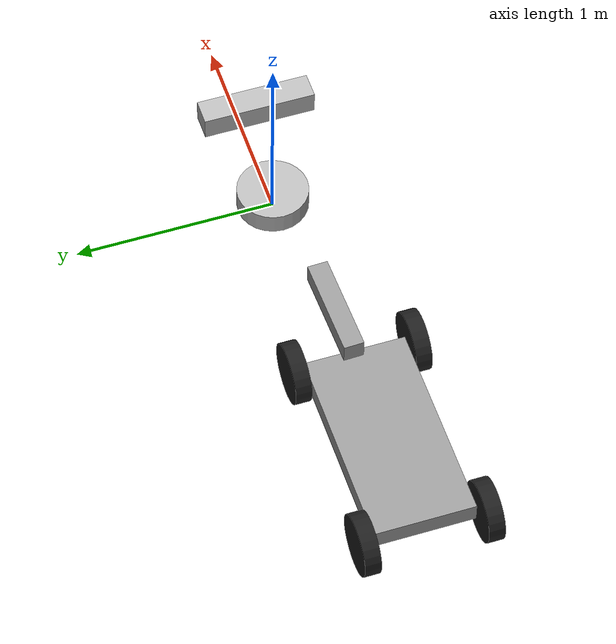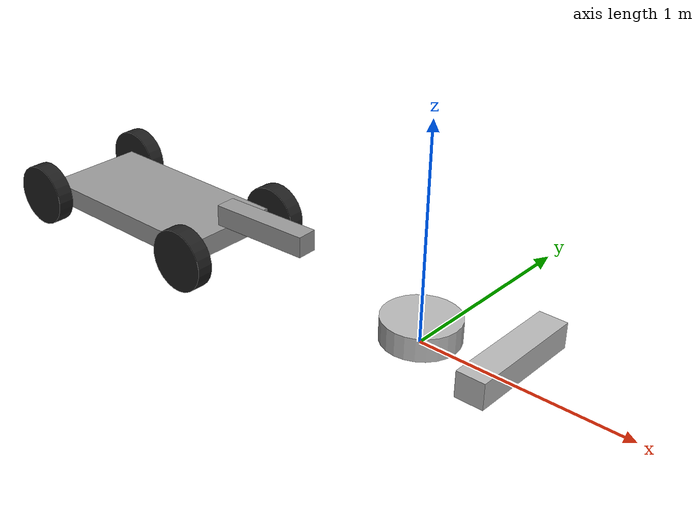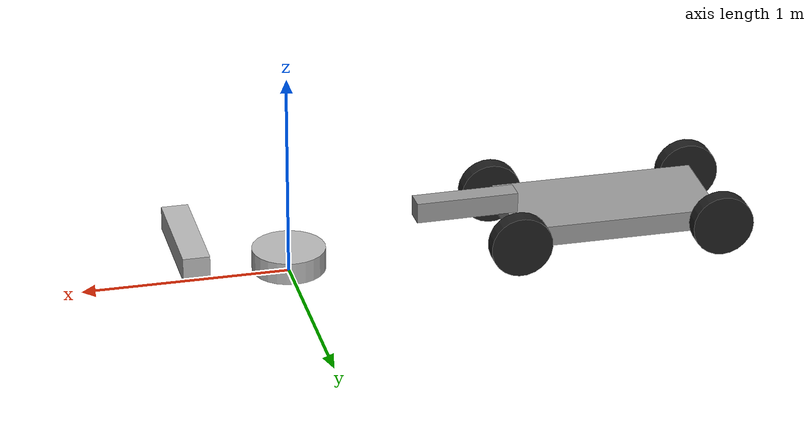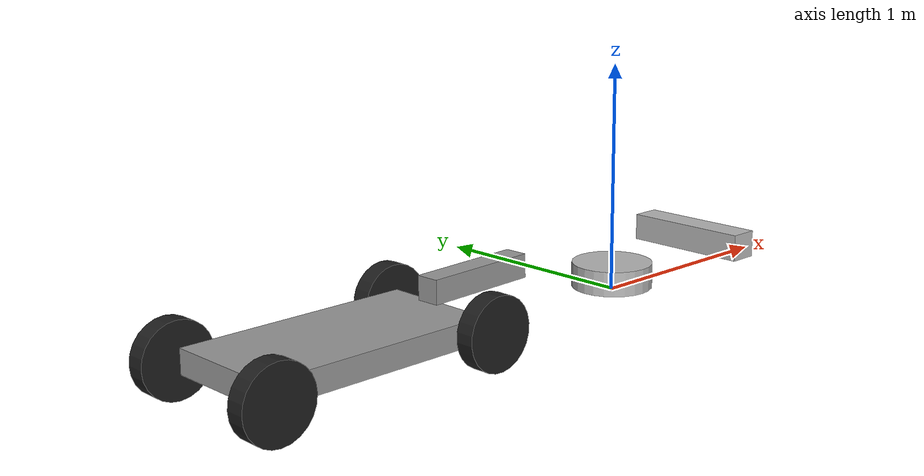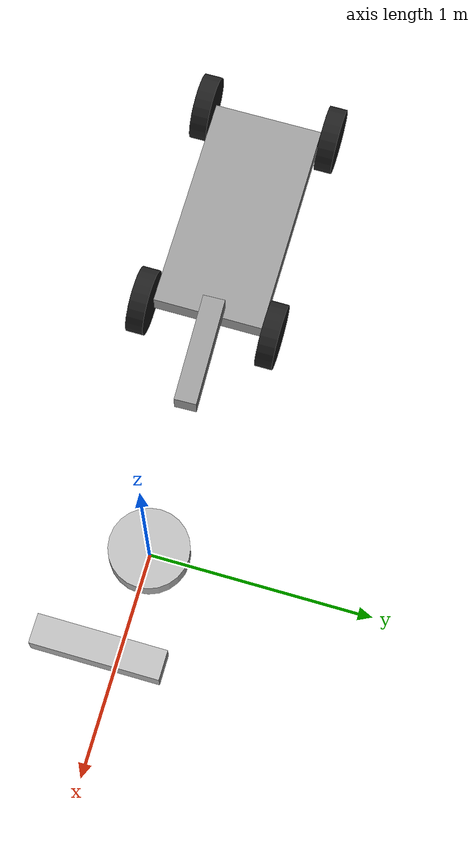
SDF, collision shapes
<?xml version='1.0'?>
<sdf version='1.6'>
  <model name='mobile_base01'>
    <link name='base_footprint'>
      <pose frame=''>0 0 -0 0 -0 0</pose>
      <inertial>
        <pose frame=''>0.099631 -0.013204 0.040491 0 -0 0</pose>
        <mass>2.9853</mass>
        <inertia>
          <ixx>0.0403281</ixx>
          <ixy>0.015217</ixy>
          <ixz>-0.0347549</ixz>
          <iyy>0.138192</iyy>
          <iyz>0.00512155</iyz>
          <izz>0.148975</izz>
        </inertia>
      </inertial>
      <self_collide>0</self_collide>
      <kinematic>0</kinematic>
      <velocity_decay/>
      <sensor name='bumpers' type='contact'>
        <always_on>1</always_on>
        <update_rate>50</update_rate>
        <visualize>1</visualize>
        <contact>
          <collision>base_footprint_fixed_joint_lump__base_collision</collision>
          <topic>__default_topic__</topic>
        </contact>
        <pose frame=''>0 0 0.0102 0 -0 0</pose>
      </sensor>
      <sensor name='camera' type='depth'>
        <always_on>1</always_on>
        <update_rate>20</update_rate>
        <camera name='__default__'>
          <horizontal_fov>1.0472</horizontal_fov>
          <image>
            <format>B8G8R8</format>
            <width>640</width>
            <height>480</height>
          </image>
          <clip>
            <near>0.05</near>
            <far>8</far>
          </clip>
        </camera>
        <plugin name='kinect_camera_controller' filename='libgazebo_ros_openni_kinect.so'>
          <cameraName>camera</cameraName>
          <alwaysOn>true</alwaysOn>
          <updateRate>10</updateRate>
          <imageTopicName>rgb/image_raw</imageTopicName>
          <depthImageTopicName>depth/image_raw</depthImageTopicName>
          <pointCloudTopicName>depth/points</pointCloudTopicName>
          <cameraInfoTopicName>rgb/camera_info</cameraInfoTopicName>
          <depthImageCameraInfoTopicName>depth/camera_info</depthImageCameraInfoTopicName>
          <frameName>camera_depth_optical_frame</frameName>
          <baseline>0.1</baseline>
          <distortion_k1>0.0</distortion_k1>
          <distortion_k2>0.0</distortion_k2>
          <distortion_k3>0.0</distortion_k3>
          <distortion_t1>0.0</distortion_t1>
          <distortion_t2>0.0</distortion_t2>
          <pointCloudCutoff>0.4</pointCloudCutoff>
          <robotNamespace>/</robotNamespace>
        </plugin>
        <pose frame=''>0.485 -0.07 0.1702 0 -0 0</pose>
      </sensor>
      <sensor name='cliff_sensor_front' type='ray'>
        <always_on>1</always_on>
        <update_rate>50</update_rate>
        <visualize>1</visualize>
        <ray>
          <scan>
            <horizontal>
              <samples>50</samples>
              <resolution>1</resolution>
              <min_angle>-0.0436</min_angle>
              <max_angle>0.0436</max_angle>
            </horizontal>
            <vertical>
              <samples>1</samples>
              <min_angle>0</min_angle>
              <max_angle>0</max_angle>
            </vertical>
          </scan>
          <range>
            <min>0.01</min>
            <max>0.15</max>
            <resolution>1</resolution>
          </range>
        </ray>
        <pose frame=''>0.156 0 0.0316 3.14159 1.57079 3.14159</pose>
      </sensor>
      <sensor name='cliff_sensor_left' type='ray'>
        <always_on>1</always_on>
        <update_rate>50</update_rate>
        <visualize>1</visualize>
        <ray>
          <scan>
            <horizontal>
              <samples>50</samples>
              <resolution>1</resolution>
              <min_angle>-0.0436</min_angle>
              <max_angle>0.0436</max_angle>
            </horizontal>
            <vertical>
              <samples>1</samples>
              <min_angle>0</min_angle>
              <max_angle>0</max_angle>
            </vertical>
          </scan>
          <range>
            <min>0.01</min>
            <max>0.15</max>
            <resolution>1</resolution>
          </range>
        </ray>
        <pose frame=''>0.08734 0.13601 0.0316 3.14159 1.57079 3.14159</pose>
      </sensor>
      <sensor name='cliff_sensor_right' type='ray'>
        <always_on>1</always_on>
        <update_rate>50</update_rate>
        <visualize>1</visualize>
        <ray>
          <scan>
            <horizontal>
              <samples>50</samples>
              <resolution>1</resolution>
              <min_angle>-0.0436</min_angle>
              <max_angle>0.0436</max_angle>
            </horizontal>
            <vertical>
              <samples>1</samples>
              <min_angle>0</min_angle>
              <max_angle>0</max_angle>
            </vertical>
          </scan>
          <range>
            <min>0.01</min>
            <max>0.15</max>
            <resolution>1</resolution>
          </range>
        </ray>
        <pose frame=''>0.085 -0.13601 0.0316 3.14159 1.57079 3.14159</pose>
      </sensor>
      <sensor name='imu' type='imu'>
        <always_on>0</always_on>
        <update_rate>50</update_rate>
        <visualize>0</visualize>
        <imu>
          <angular_velocity>
            <x>
              <noise type='gaussian'>
                <mean>0</mean>
                <stddev>1.96e-06</stddev>
                <bias_mean>0</bias_mean>
                <bias_stddev>0</bias_stddev>
              </noise>
            </x>
            <y>
              <noise type='gaussian'>
                <mean>0</mean>
                <stddev>1.96e-06</stddev>
                <bias_mean>0</bias_mean>
                <bias_stddev>0</bias_stddev>
              </noise>
            </y>
            <z>
              <noise type='gaussian'>
                <mean>0</mean>
                <stddev>1.96e-06</stddev>
                <bias_mean>0</bias_mean>
                <bias_stddev>0</bias_stddev>
              </noise>
            </z>
          </angular_velocity>
          <linear_acceleration>
            <x>
              <noise type='gaussian'>
                <mean>0</mean>
                <stddev>0.017</stddev>
                <bias_mean>0.1</bias_mean>
                <bias_stddev>0.001</bias_stddev>
              </noise>
            </x>
            <y>
              <noise type='gaussian'>
                <mean>0</mean>
                <stddev>0.017</stddev>
                <bias_mean>0.1</bias_mean>
                <bias_stddev>0.001</bias_stddev>
              </noise>
            </y>
            <z>
              <noise type='gaussian'>
                <mean>0</mean>
                <stddev>0.017</stddev>
                <bias_mean>0.1</bias_mean>
                <bias_stddev>0.001</bias_stddev>
              </noise>
            </z>
          </linear_acceleration>
        </imu>
        <pose frame=''>0.056 0.062 0.0304 0 -0 0</pose>
      </sensor>
      <sensor name='head_laser_sensor' type='gpu_ray'>
        <visualize>1</visualize>
        <update_rate>40</update_rate>
        <ray>
          <scan>
            <horizontal>
              <samples>720</samples>
              <resolution>1</resolution>
              <min_angle>-1.5708</min_angle>
              <max_angle>1.5708</max_angle>
            </horizontal>
          </scan>
          <range>
            <min>0.1</min>
            <max>10</max>
            <resolution>0.01</resolution>
          </range>
          <noise>
            <type>gaussian</type>
            <mean>0</mean>
            <stddev>0.01</stddev>
          </noise>
        </ray>
        <plugin name='gazebo_ros_head_laser_controller' filename='libgazebo_ros_gpu_laser.so'>
          <topicName>/scan</topicName>
          <frameName>base_laser_link</frameName>
          <robotNamespace>/</robotNamespace>
        </plugin>
        <pose frame=''>0.454 0 0.1502 0 -0 0</pose>
      </sensor>
      <visual name='base_footprint_fixed_joint_lump__base_link_visual'>
        <pose frame=''>0.5 0 0.03219 0 0 -3.14</pose>
        <geometry>
          <mesh>
            <scale>1 1 1</scale>
            <uri>/home/s-amani/catkin_ws/src/casep/casep_desc/meshes/key-cart.dae</uri>
          </mesh>
        </geometry>
        <material>
          <script>
            <uri>__default__</uri>
            <name>__default__</name>
          </script>
          <emissive>0 0 0 1</emissive>
        </material>
        <cast_shadows>1</cast_shadows>
        <transparency>0</transparency>
      </visual>
      <visual name='base_footprint_fixed_joint_lump__camera_visual_1'>
        <pose frame=''>0.485 -0.07 0.1702 1.5708 -0 1.5708</pose>
        <geometry>
          <mesh>
            <scale>1 1 1</scale>
            <uri>/home/s-amani/catkin_ws/src/casep/casep_desc/meshes/sensors/r200.dae</uri>
          </mesh>
        </geometry>
        <material>
          <script>
            <uri>__default__</uri>
            <name>__default__</name>
          </script>
          <emissive>0 0 0 1</emissive>
        </material>
        <cast_shadows>1</cast_shadows>
        <transparency>0</transparency>
      </visual>
      <visual name='base_footprint_fixed_joint_lump__base_laser_link_visual_2'>
        <pose frame=''>0.454 0 0.1502 0 -0 0</pose>
        <geometry>
          <mesh>
            <scale>1 1 1</scale>
            <uri>/home/s-amani/catkin_ws/src/casep/casep_desc/meshes/sensors/hokuyo.dae</uri>
          </mesh>
        </geometry>
        <material>
          <script>
            <uri>__default__</uri>
            <name>__default__</name>
          </script>
          <emissive>0 0 0 1</emissive>
        </material>
        <cast_shadows>1</cast_shadows>
        <transparency>0</transparency>
      </visual>
      <collision name='base_footprint_fixed_joint_lump__base_collision'>
        <laser_retro>0</laser_retro>
        <max_contacts>10</max_contacts>
        <pose frame=''>0 0 0.06969 0 -0 0</pose>
        <geometry>
          <cylinder>
            <radius>0.178</radius>
            <length>0.10938</length>
          </cylinder>
        </geometry>
        <surface>
          <friction>
            <ode>
              <mu>1</mu>
              <mu2>1</mu2>
              <fdir1>0 0 0</fdir1>
              <slip1>0</slip1>
              <slip2>0</slip2>
            </ode>
            <torsional>
              <coefficient>1</coefficient>
              <patch_radius>0</patch_radius>
              <surface_radius>0</surface_radius>
              <use_patch_radius>1</use_patch_radius>
              <ode>
                <slip>0</slip>
              </ode>
            </torsional>
          </friction>
          <bounce>
            <restitution_coefficient>0</restitution_coefficient>
            <threshold>1e+06</threshold>
          </bounce>
          <contact>
            <collide_without_contact>0</collide_without_contact>
            <collide_without_contact_bitmask>1</collide_without_contact_bitmask>
            <collide_bitmask>1</collide_bitmask>
            <ode>
              <soft_cfm>0</soft_cfm>
              <soft_erp>0.2</soft_erp>
              <kp>1e+13</kp>
              <kd>1</kd>
              <max_vel>0.01</max_vel>
              <min_depth>0</min_depth>
            </ode>
            <bullet>
              <split_impulse>1</split_impulse>
              <split_impulse_penetration_threshold>-0.01</split_impulse_penetration_threshold>
              <soft_cfm>0</soft_cfm>
              <soft_erp>0.2</soft_erp>
              <kp>1e+13</kp>
              <kd>1</kd>
            </bullet>
          </contact>
        </surface>
      </collision>
      <collision name='base_footprint_fixed_joint_lump__camera_collision_1'>
        <laser_retro>0</laser_retro>
        <max_contacts>10</max_contacts>
        <pose frame=''>0.485 -0.07 0.1702 0 -0 0</pose>
        <geometry>
          <box>
            <size>0.13 0.567 0.118</size>
          </box>
        </geometry>
        <surface>
          <friction>
            <ode>
              <mu>1</mu>
              <mu2>1</mu2>
              <fdir1>0 0 0</fdir1>
              <slip1>0</slip1>
              <slip2>0</slip2>
            </ode>
            <torsional>
              <coefficient>1</coefficient>
              <patch_radius>0</patch_radius>
              <surface_radius>0</surface_radius>
              <use_patch_radius>1</use_patch_radius>
              <ode>
                <slip>0</slip>
              </ode>
            </torsional>
          </friction>
          <bounce>
            <restitution_coefficient>0</restitution_coefficient>
            <threshold>1e+06</threshold>
          </bounce>
          <contact>
            <collide_without_contact>0</collide_without_contact>
            <collide_without_contact_bitmask>1</collide_without_contact_bitmask>
            <collide_bitmask>1</collide_bitmask>
            <ode>
              <soft_cfm>0</soft_cfm>
              <soft_erp>0.2</soft_erp>
              <kp>1e+13</kp>
              <kd>1</kd>
              <max_vel>0.01</max_vel>
              <min_depth>0</min_depth>
            </ode>
            <bullet>
              <split_impulse>1</split_impulse>
              <split_impulse_penetration_threshold>-0.01</split_impulse_penetration_threshold>
              <soft_cfm>0</soft_cfm>
              <soft_erp>0.2</soft_erp>
              <kp>1e+13</kp>
              <kd>1</kd>
            </bullet>
          </contact>
        </surface>
      </collision>
      <collision name='base_footprint_fixed_joint_lump__caster_back_link_collision_2'>
        <laser_retro>0</laser_retro>
        <max_contacts>10</max_contacts>
        <pose frame=''>-0.135 0 0.0192 -1.5708 0 0</pose>
        <geometry>
          <cylinder>
            <radius>0.017</radius>
            <length>0.0176</length>
          </cylinder>
        </geometry>
        <surface>
          <friction>
            <ode>
              <mu>0</mu>
              <mu2>0</mu2>
              <fdir1>0 0 0</fdir1>
              <slip1>0</slip1>
              <slip2>0</slip2>
            </ode>
            <torsional>
              <coefficient>1</coefficient>
              <patch_radius>0</patch_radius>
              <surface_radius>0</surface_radius>
              <use_patch_radius>1</use_patch_radius>
              <ode>
                <slip>0</slip>
              </ode>
            </torsional>
          </friction>
          <bounce>
            <restitution_coefficient>0</restitution_coefficient>
            <threshold>1e+06</threshold>
          </bounce>
          <contact>
            <collide_without_contact>0</collide_without_contact>
            <collide_without_contact_bitmask>1</collide_without_contact_bitmask>
            <collide_bitmask>1</collide_bitmask>
            <ode>
              <soft_cfm>0</soft_cfm>
              <soft_erp>0.2</soft_erp>
              <kp>1e+06</kp>
              <kd>100</kd>
              <max_vel>1</max_vel>
              <min_depth>0.001</min_depth>
            </ode>
            <bullet>
              <split_impulse>1</split_impulse>
              <split_impulse_penetration_threshold>-0.01</split_impulse_penetration_threshold>
              <soft_cfm>0</soft_cfm>
              <soft_erp>0.2</soft_erp>
              <kp>1e+06</kp>
              <kd>100</kd>
            </bullet>
          </contact>
        </surface>
      </collision>
      <collision name='base_footprint_fixed_joint_lump__caster_front_link_collision_3'>
        <laser_retro>0</laser_retro>
        <max_contacts>10</max_contacts>
        <pose frame=''>0.115 0 0.0172 -1.5708 0 0</pose>
        <geometry>
          <cylinder>
            <radius>0.017</radius>
            <length>0.0176</length>
          </cylinder>
        </geometry>
        <surface>
          <friction>
            <ode>
              <mu>0</mu>
              <mu2>0</mu2>
              <fdir1>0 0 0</fdir1>
              <slip1>0</slip1>
              <slip2>0</slip2>
            </ode>
            <torsional>
              <coefficient>1</coefficient>
              <patch_radius>0</patch_radius>
              <surface_radius>0</surface_radius>
              <use_patch_radius>1</use_patch_radius>
              <ode>
                <slip>0</slip>
              </ode>
            </torsional>
          </friction>
          <bounce>
            <restitution_coefficient>0</restitution_coefficient>
            <threshold>1e+06</threshold>
          </bounce>
          <contact>
            <collide_without_contact>0</collide_without_contact>
            <collide_without_contact_bitmask>1</collide_without_contact_bitmask>
            <collide_bitmask>1</collide_bitmask>
            <ode>
              <soft_cfm>0</soft_cfm>
              <soft_erp>0.2</soft_erp>
              <kp>1e+06</kp>
              <kd>100</kd>
              <max_vel>1</max_vel>
              <min_depth>0.001</min_depth>
            </ode>
            <bullet>
              <split_impulse>1</split_impulse>
              <split_impulse_penetration_threshold>-0.01</split_impulse_penetration_threshold>
              <soft_cfm>0</soft_cfm>
              <soft_erp>0.2</soft_erp>
              <kp>1e+06</kp>
              <kd>100</kd>
            </bullet>
          </contact>
        </surface>
      </collision>
    </link>
    <link name='link_2'>
      <pose frame=''>-0.87227 -0.027973 0.242448 -0.009459 0.0012 1.60131</pose>
      <inertial>
        <mass>1</mass>
        <inertia>
          <ixx>0.166667</ixx>
          <ixy>0</ixy>
          <ixz>0</ixz>
          <iyy>0.166667</iyy>
          <iyz>0</iyz>
          <izz>0.166667</izz>
        </inertia>
        <pose frame=''>0 0 0 0 -0 0</pose>
      </inertial>
      <gravity>1</gravity>
      <self_collide>0</self_collide>
      <kinematic>0</kinematic>
      <visual name='visual'>
        <pose frame=''>0 0 0 0 -0 0</pose>
        <geometry>
          <box>
            <size>0.1 0.5 0.1</size>
          </box>
        </geometry>
        <material>
          <lighting>1</lighting>
          <script>
            <uri>file://media/materials/scripts/gazebo.material</uri>
            <name>Gazebo/Grey</name>
          </script>
          <ambient>0.3 0.3 0.3 1</ambient>
          <diffuse>0.7 0.7 0.7 1</diffuse>
          <specular>0.01 0.01 0.01 1</specular>
          <emissive>0 0 0 1</emissive>
          <shader type='vertex'>
            <normal_map>__default__</normal_map>
          </shader>
        </material>
        <cast_shadows>1</cast_shadows>
        <transparency>0</transparency>
      </visual>
      <collision name='collision'>
        <laser_retro>0</laser_retro>
        <max_contacts>10</max_contacts>
        <pose frame=''>0 0 0 0 -0 0</pose>
        <geometry>
          <box>
            <size>0.1 0.5 0.1</size>
          </box>
        </geometry>
        <surface>
          <friction>
            <ode>
              <mu>1</mu>
              <mu2>1</mu2>
              <fdir1>0 0 0</fdir1>
              <slip1>0</slip1>
              <slip2>0</slip2>
            </ode>
            <torsional>
              <coefficient>1</coefficient>
              <patch_radius>0</patch_radius>
              <surface_radius>0</surface_radius>
              <use_patch_radius>1</use_patch_radius>
              <ode>
                <slip>0</slip>
              </ode>
            </torsional>
          </friction>
          <bounce>
            <restitution_coefficient>0</restitution_coefficient>
            <threshold>1e+06</threshold>
          </bounce>
          <contact>
            <collide_without_contact>0</collide_without_contact>
            <collide_without_contact_bitmask>1</collide_without_contact_bitmask>
            <collide_bitmask>1</collide_bitmask>
            <ode>
              <soft_cfm>0</soft_cfm>
              <soft_erp>0.2</soft_erp>
              <kp>1e+13</kp>
              <kd>1</kd>
              <max_vel>0.01</max_vel>
              <min_depth>0</min_depth>
            </ode>
            <bullet>
              <split_impulse>1</split_impulse>
              <split_impulse_penetration_threshold>-0.01</split_impulse_penetration_threshold>
              <soft_cfm>0</soft_cfm>
              <soft_erp>0.2</soft_erp>
              <kp>1e+13</kp>
              <kd>1</kd>
            </bullet>
          </contact>
        </surface>
      </collision>
    </link>
    <link name='wheel_left_link'>
      <pose frame=''>-0 0.115 0.0352 -1.5708 -0 0</pose>
      <inertial>
        <pose frame=''>0 0 0 0 -0 0</pose>
        <mass>0.01</mass>
        <inertia>
          <ixx>0.001</ixx>
          <ixy>0</ixy>
          <ixz>0</ixz>
          <iyy>0.001</iyy>
          <iyz>0</iyz>
          <izz>0.001</izz>
        </inertia>
      </inertial>
      <self_collide>0</self_collide>
      <kinematic>0</kinematic>
      <velocity_decay/>
      <visual name='wheel_left_link_visual'>
        <pose frame=''>0 0 0 0 -0 0</pose>
        <geometry>
          <mesh>
            <scale>1 1 1</scale>
            <uri>/opt/ros/kinetic/share/kobuki_description/meshes/wheel.dae</uri>
          </mesh>
        </geometry>
        <material>
          <script>
            <uri>__default__</uri>
            <name>__default__</name>
          </script>
        </material>
        <cast_shadows>1</cast_shadows>
        <transparency>0</transparency>
      </visual>
      <collision name='wheel_left_link_collision'>
        <laser_retro>0</laser_retro>
        <max_contacts>10</max_contacts>
        <pose frame=''>0 0 0 0 -0 0</pose>
        <geometry>
          <cylinder>
            <radius>0.0352</radius>
            <length>0.0206</length>
          </cylinder>
        </geometry>
        <surface>
          <friction>
            <ode>
              <mu>1</mu>
              <mu2>1</mu2>
              <fdir1>0 0 0</fdir1>
              <slip1>0</slip1>
              <slip2>0</slip2>
            </ode>
            <torsional>
              <coefficient>1</coefficient>
              <patch_radius>0</patch_radius>
              <surface_radius>0</surface_radius>
              <use_patch_radius>1</use_patch_radius>
              <ode>
                <slip>0</slip>
              </ode>
            </torsional>
          </friction>
          <bounce>
            <restitution_coefficient>0</restitution_coefficient>
            <threshold>1e+06</threshold>
          </bounce>
          <contact>
            <collide_without_contact>0</collide_without_contact>
            <collide_without_contact_bitmask>1</collide_without_contact_bitmask>
            <collide_bitmask>1</collide_bitmask>
            <ode>
              <soft_cfm>0</soft_cfm>
              <soft_erp>0.2</soft_erp>
              <kp>1e+06</kp>
              <kd>100</kd>
              <max_vel>1</max_vel>
              <min_depth>0.001</min_depth>
            </ode>
            <bullet>
              <split_impulse>1</split_impulse>
              <split_impulse_penetration_threshold>-0.01</split_impulse_penetration_threshold>
              <soft_cfm>0</soft_cfm>
              <soft_erp>0.2</soft_erp>
              <kp>1e+06</kp>
              <kd>100</kd>
            </bullet>
          </contact>
        </surface>
      </collision>
    </link>
    <link name='wheel_right_link'>
      <pose frame=''>0 -0.115 0.0352 -1.5708 -0 0</pose>
      <inertial>
        <pose frame=''>0 0 0 0 -0 0</pose>
        <mass>0.01</mass>
        <inertia>
          <ixx>0.001</ixx>
          <ixy>0</ixy>
          <ixz>0</ixz>
          <iyy>0.001</iyy>
          <iyz>0</iyz>
          <izz>0.001</izz>
        </inertia>
      </inertial>
      <self_collide>0</self_collide>
      <kinematic>0</kinematic>
      <velocity_decay/>
      <visual name='wheel_right_link_visual'>
        <pose frame=''>0 0 0 0 -0 0</pose>
        <geometry>
          <mesh>
            <scale>1 1 1</scale>
            <uri>/opt/ros/kinetic/share/kobuki_description/meshes/wheel.dae</uri>
          </mesh>
        </geometry>
        <material>
          <script>
            <uri>__default__</uri>
            <name>__default__</name>
          </script>
        </material>
        <cast_shadows>1</cast_shadows>
        <transparency>0</transparency>
      </visual>
      <collision name='wheel_right_link_collision'>
        <laser_retro>0</laser_retro>
        <max_contacts>10</max_contacts>
        <pose frame=''>0 0 0 0 -0 0</pose>
        <geometry>
          <cylinder>
            <radius>0.035</radius>
            <length>0.0206</length>
          </cylinder>
        </geometry>
        <surface>
          <friction>
            <ode>
              <mu>1</mu>
              <mu2>1</mu2>
              <fdir1>0 0 0</fdir1>
              <slip1>0</slip1>
              <slip2>0</slip2>
            </ode>
            <torsional>
              <coefficient>1</coefficient>
              <patch_radius>0</patch_radius>
              <surface_radius>0</surface_radius>
              <use_patch_radius>1</use_patch_radius>
              <ode>
                <slip>0</slip>
              </ode>
            </torsional>
          </friction>
          <bounce>
            <restitution_coefficient>0</restitution_coefficient>
            <threshold>1e+06</threshold>
          </bounce>
          <contact>
            <collide_without_contact>0</collide_without_contact>
            <collide_without_contact_bitmask>1</collide_without_contact_bitmask>
            <collide_bitmask>1</collide_bitmask>
            <ode>
              <soft_cfm>0</soft_cfm>
              <soft_erp>0.2</soft_erp>
              <kp>1e+06</kp>
              <kd>100</kd>
              <max_vel>1</max_vel>
              <min_depth>0.001</min_depth>
            </ode>
            <bullet>
              <split_impulse>1</split_impulse>
              <split_impulse_penetration_threshold>-0.01</split_impulse_penetration_threshold>
              <soft_cfm>0</soft_cfm>
              <soft_erp>0.2</soft_erp>
              <kp>1e+06</kp>
              <kd>100</kd>
            </bullet>
          </contact>
        </surface>
      </collision>
    </link>
    <model name='cart_front_steer'>
      <link name='chassis'>
        <pose frame=''>0 0 0.15 0 -0 0</pose>
        <inertial>
          <pose frame=''>0.1 0 0 0 -0 0</pose>
          <mass>10</mass>
          <inertia>
            <ixx>0.216667</ixx>
            <iyy>0.841667</iyy>
            <izz>1.04167</izz>
            <ixy>0</ixy>
            <ixz>0</ixz>
            <iyz>0</iyz>
          </inertia>
        </inertial>
        <collision name='collision'>
          <geometry>
            <box>
              <size>1 0.5 0.1</size>
            </box>
          </geometry>
        </collision>
        <visual name='visual'>
          <geometry>
            <box>
              <size>1 0.5 0.1</size>
            </box>
          </geometry>
          <material>
            <script>
              <uri>file://media/materials/scripts/gazebo.material</uri>
              <name>Gazebo/Grey</name>
            </script>
          </material>
        </visual>
      </link>
      <link name='wheel_front_left'>
        <pose frame=''>0.5 0.298 0.15 -1.5708 -0.087266 0</pose>
        <inertial>
          <mass>0.5</mass>
          <inertia>
            <ixx>0.00307917</ixx>
            <iyy>0.00307917</iyy>
            <izz>0.005625</izz>
            <ixy>0</ixy>
            <ixz>0</ixz>
            <iyz>0</iyz>
          </inertia>
        </inertial>
        <collision name='collision'>
          <geometry>
            <cylinder>
              <radius>0.15</radius>
              <length>0.08</length>
            </cylinder>
          </geometry>
        </collision>
        <visual name='visual'>
          <geometry>
            <cylinder>
              <radius>0.15</radius>
              <length>0.08</length>
            </cylinder>
          </geometry>
          <material>
            <script>
              <uri>file://media/materials/scripts/gazebo.material</uri>
              <name>Gazebo/Black</name>
            </script>
          </material>
        </visual>
      </link>
      <joint name='wheel_front_left_steer_spin' type='universal'>
        <parent>chassis</parent>
        <child>wheel_front_left</child>
        <axis>
          <xyz>0 -1 0</xyz>
          <limit>
            <lower>-0.610865</lower>
            <upper>0.610865</upper>
          </limit>
          <use_parent_model_frame>0</use_parent_model_frame>
        </axis>
        <axis2>
          <xyz>0 0 1</xyz>
          <use_parent_model_frame>0</use_parent_model_frame>
        </axis2>
      </joint>
      <link name='wheel_front_right'>
        <pose frame=''>0.5 -0.298 0.15 -1.5708 -0.087266 0</pose>
        <inertial>
          <mass>0.5</mass>
          <inertia>
            <ixx>0.00307917</ixx>
            <iyy>0.00307917</iyy>
            <izz>0.005625</izz>
            <ixy>0</ixy>
            <ixz>0</ixz>
            <iyz>0</iyz>
          </inertia>
        </inertial>
        <collision name='collision'>
          <geometry>
            <cylinder>
              <radius>0.15</radius>
              <length>0.08</length>
            </cylinder>
          </geometry>
        </collision>
        <visual name='visual'>
          <geometry>
            <cylinder>
              <radius>0.15</radius>
              <length>0.08</length>
            </cylinder>
          </geometry>
          <material>
            <script>
              <uri>file://media/materials/scripts/gazebo.material</uri>
              <name>Gazebo/Black</name>
            </script>
          </material>
        </visual>
      </link>
      <joint name='wheel_front_right_steer_spin' type='universal'>
        <parent>chassis</parent>
        <child>wheel_front_right</child>
        <axis>
          <xyz>0 -1 0</xyz>
          <limit>
            <lower>-0.610865</lower>
            <upper>0.610865</upper>
          </limit>
          <use_parent_model_frame>0</use_parent_model_frame>
        </axis>
        <axis2>
          <xyz>0 0 1</xyz>
          <use_parent_model_frame>0</use_parent_model_frame>
        </axis2>
      </joint>
      <link name='wheel_rear_left'>
        <pose frame=''>-0.5 0.298 0.15 -1.5708 0 0</pose>
        <inertial>
          <mass>0.5</mass>
          <inertia>
            <ixx>0.00307917</ixx>
            <iyy>0.00307917</iyy>
            <izz>0.005625</izz>
            <ixy>0</ixy>
            <ixz>0</ixz>
            <iyz>0</iyz>
          </inertia>
        </inertial>
        <collision name='collision'>
          <geometry>
            <cylinder>
              <radius>0.15</radius>
              <length>0.08</length>
            </cylinder>
          </geometry>
        </collision>
        <visual name='visual'>
          <geometry>
            <cylinder>
              <radius>0.15</radius>
              <length>0.08</length>
            </cylinder>
          </geometry>
          <material>
            <script>
              <uri>file://media/materials/scripts/gazebo.material</uri>
              <name>Gazebo/Black</name>
            </script>
          </material>
        </visual>
      </link>
      <joint name='wheel_rear_left_spin' type='revolute'>
        <parent>chassis</parent>
        <child>wheel_rear_left</child>
        <axis>
          <xyz>0 0 1</xyz>
          <use_parent_model_frame>0</use_parent_model_frame>
          <limit>
            <lower>-1e+16</lower>
            <upper>1e+16</upper>
          </limit>
        </axis>
      </joint>
      <link name='wheel_rear_right'>
        <pose frame=''>-0.5 -0.298 0.15 -1.5708 0 0</pose>
        <inertial>
          <mass>0.5</mass>
          <inertia>
            <ixx>0.00307917</ixx>
            <iyy>0.00307917</iyy>
            <izz>0.005625</izz>
            <ixy>0</ixy>
            <ixz>0</ixz>
            <iyz>0</iyz>
          </inertia>
        </inertial>
        <collision name='collision'>
          <geometry>
            <cylinder>
              <radius>0.15</radius>
              <length>0.08</length>
            </cylinder>
          </geometry>
        </collision>
        <visual name='visual'>
          <geometry>
            <cylinder>
              <radius>0.15</radius>
              <length>0.08</length>
            </cylinder>
          </geometry>
          <material>
            <script>
              <uri>file://media/materials/scripts/gazebo.material</uri>
              <name>Gazebo/Black</name>
            </script>
          </material>
        </visual>
      </link>
      <joint name='wheel_rear_right_spin' type='revolute'>
        <parent>chassis</parent>
        <child>wheel_rear_right</child>
        <axis>
          <xyz>0 0 1</xyz>
          <use_parent_model_frame>0</use_parent_model_frame>
          <limit>
            <lower>-1e+16</lower>
            <upper>1e+16</upper>
          </limit>
        </axis>
      </joint>
      <pose frame=''>-1.57853 -0.054271 -0.014933 0 -0 0</pose>
    </model>
    <joint name='base_footprint_JOINT_1' type='fixed'>
      <parent>base_footprint</parent>
      <child>link_2</child>
      <pose frame=''>0 0 0 0 -0 0</pose>
      <physics>
        <ode>
          <limit>
            <cfm>0</cfm>
            <erp>0.2</erp>
          </limit>
          <suspension>
            <cfm>0</cfm>
            <erp>0.2</erp>
          </suspension>
        </ode>
      </physics>
    </joint>
    <joint name='chassis_JOINT_0' type='fixed'>
      <parent>cart_front_steer::chassis</parent>
      <child>link_2</child>
      <pose frame=''>0 0 0 0 -0 0</pose>
      <physics>
        <ode>
          <limit>
            <cfm>0</cfm>
            <erp>0.2</erp>
          </limit>
          <suspension>
            <cfm>0</cfm>
            <erp>0.2</erp>
          </suspension>
        </ode>
      </physics>
    </joint>
    <joint name='wheel_left_joint' type='revolute'>
      <parent>base_footprint</parent>
      <child>wheel_left_link</child>
      <pose frame=''>0 0 0 0 -0 0</pose>
      <axis>
        <xyz>0 1 0</xyz>
        <use_parent_model_frame>1</use_parent_model_frame>
        <limit>
          <lower>-1e+16</lower>
          <upper>1e+16</upper>
          <effort>-1</effort>
          <velocity>-1</velocity>
        </limit>
        <dynamics>
          <spring_reference>0</spring_reference>
          <spring_stiffness>0</spring_stiffness>
          <damping>0</damping>
          <friction>0</friction>
        </dynamics>
      </axis>
      <physics>
        <ode>
          <limit>
            <cfm>0</cfm>
            <erp>0.2</erp>
          </limit>
          <suspension>
            <cfm>0</cfm>
            <erp>0.2</erp>
          </suspension>
        </ode>
      </physics>
    </joint>
    <joint name='wheel_right_joint' type='revolute'>
      <parent>base_footprint</parent>
      <child>wheel_right_link</child>
      <pose frame=''>0 0 0 0 -0 0</pose>
      <axis>
        <xyz>0 1 0</xyz>
        <use_parent_model_frame>1</use_parent_model_frame>
        <limit>
          <lower>-1e+16</lower>
          <upper>1e+16</upper>
          <effort>-1</effort>
          <velocity>-1</velocity>
        </limit>
        <dynamics>
          <spring_reference>0</spring_reference>
          <spring_stiffness>0</spring_stiffness>
          <damping>0</damping>
          <friction>0</friction>
        </dynamics>
      </axis>
      <physics>
        <ode>
          <limit>
            <cfm>0</cfm>
            <erp>0.2</erp>
          </limit>
          <suspension>
            <cfm>0</cfm>
            <erp>0.2</erp>
          </suspension>
        </ode>
      </physics>
    </joint>
    <static>0</static>
    <allow_auto_disable>1</allow_auto_disable>
    <plugin name='kobuki_controller' filename='libgazebo_ros_kobuki.so'>
      <publish_tf>1</publish_tf>
      <left_wheel_joint_name>wheel_left_joint</left_wheel_joint_name>
      <right_wheel_joint_name>wheel_right_joint</right_wheel_joint_name>
      <wheel_separation>.230</wheel_separation>
      <wheel_diameter>0.070</wheel_diameter>
      <torque>1.0</torque>
      <velocity_command_timeout>0.6</velocity_command_timeout>
      <cliff_sensor_left_name>cliff_sensor_left</cliff_sensor_left_name>
      <cliff_sensor_center_name>cliff_sensor_front</cliff_sensor_center_name>
      <cliff_sensor_right_name>cliff_sensor_right</cliff_sensor_right_name>
      <cliff_detection_threshold>0.04</cliff_detection_threshold>
      <bumper_name>bumpers</bumper_name>
      <imu_name>imu</imu_name>
      <robotNamespace>/</robotNamespace>
    </plugin>
  </model>
</sdf>
